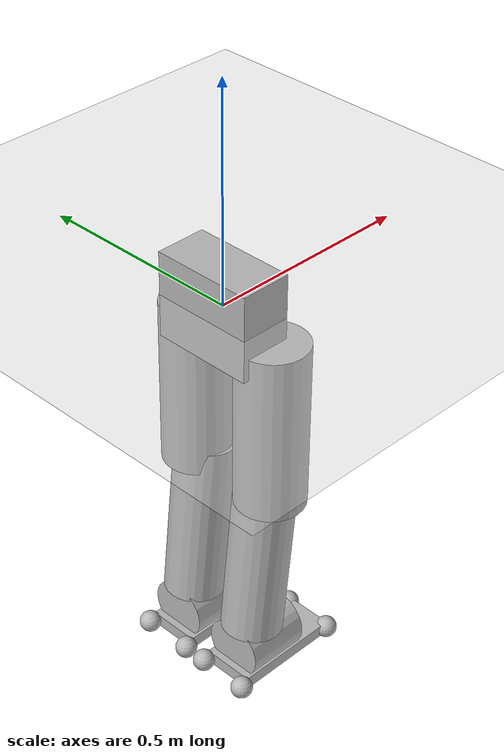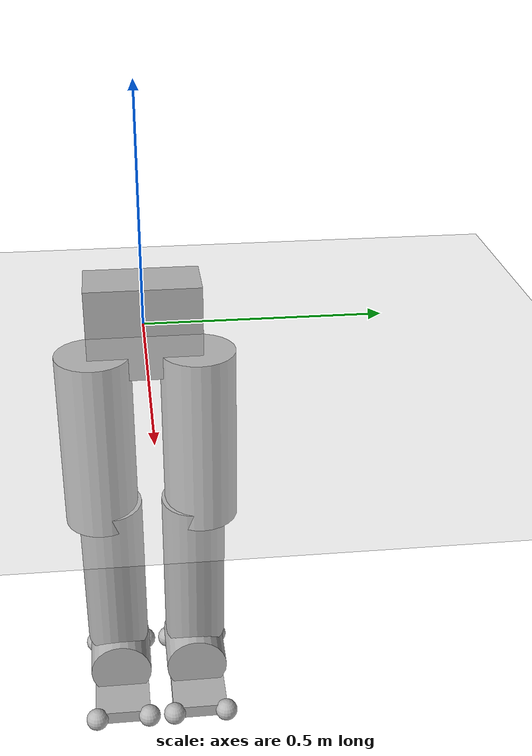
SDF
<?xml version="1.0" ?>
<sdf version="1.5">
  <world name="default">
  <physics type="ode">
    <max_step_size>0.001</max_step_size>
    <real_time_factor>1</real_time_factor>
    <real_time_update_rate>1000</real_time_update_rate>
    <max_contacts>1000</max_contacts>
    <simbody>
      <min_step_size>0.0001</min_step_size>
      <accuracy>0.001</accuracy>
      <max_transient_velocity>0.01</max_transient_velocity>
      <contact>
        <stiffness>1e8</stiffness>
        <dissipation>100</dissipation>
        <plastic_coef_restitution>0.5</plastic_coef_restitution>
        <plastic_impact_velocity>0.5</plastic_impact_velocity>
        <static_friction>0.1</static_friction>
        <dynamic_friction>0.1</dynamic_friction>
        <viscous_friction>0</viscous_friction>
        <override_impact_capture_velocity>0.001</override_impact_capture_velocity>
        <override_stiction_transition_velocity>0.001</override_stiction_transition_velocity>
      </contact>
    </simbody>
    <bullet>
      <solver>
        <type>sequential_impulse</type>
        <min_step_size>1e-5</min_step_size>
        <iters>50</iters>
        <sor>1.3</sor>
      </solver>
      <constraints>
        <cfm>0.0</cfm>
        <erp>0.2</erp>
        <contact_surface_layer>0.001</contact_surface_layer>
        <split_impulse>1</split_impulse>
        <split_impulse_penetration_threshold>-0.01</split_impulse_penetration_threshold>
      </constraints>
    </bullet>
    <ode>
      <solver>
        <type>quick</type>
        <min_step_size>1e-6</min_step_size>
        <iters>1000</iters>
        <sor>1.0</sor>
      </solver>
      <constraints>
        <cfm>0.0</cfm>
        <erp>0.6</erp>
        <contact_max_correcting_vel>1e2</contact_max_correcting_vel>
        <contact_surface_layer>1e-5</contact_surface_layer>
      </constraints>
    </ode>
  </physics>
    <!-- Ground -->
    <include>
      <uri>model://ground_plane</uri>
    </include>
    <!-- Links (Lynx) model -->
    <include>
      <uri>model://atlas</uri>
      <pose>0 0 0 0 0 0</pose>
    </include>
    <!-- A global light source -->
    <include>
      <uri>model://sun</uri>
    </include>
  </world>
</sdf>

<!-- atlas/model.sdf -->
<sdf version='1.5'>
  <model name='ROBOT'>
  <plugin name="PacerPlugin" filename="libPacerGazeboPlugin.so"/>
  <pose>0 0 1 0 -0 0</pose>
    <link name='BODY0'>
      <pose>0 0 0 0 -0 0</pose>
      <inertial>
        <mass>14.2529</mass>
        <inertia>
          <ixx>0.1</ixx>
          <ixy>0.0</ixy>
          <ixz>-0.0</ixz>
          <iyy>0.1</iyy>
          <iyz>-0.0</iyz>
          <izz>0.1</izz>
        </inertia>
      </inertial>
      <visual name='BODY0_visual'>
        <geometry>
          <box>
            <size>0.12 0.24 0.20</size>
          </box>
        </geometry>
      </visual>
      <velocity_decay>
        <linear>0</linear>
        <angular>0</angular>
      </velocity_decay>
    </link>
    <link name='l_uglut'>
      <pose>0 0.089 0 0 -0 0</pose>
      <inertial>
        <pose>0 0 0 0 0 0</pose>
        <mass>0.5166</mass>
        <inertia>
          <ixx>0.01</ixx>
          <ixy>0.0</ixy>
          <ixz>-0.0</ixz>
          <iyy>0.01</iyy>
          <iyz>-0.0</iyz>
          <izz>0.01</izz>
        </inertia>
      </inertial>
      <visual name='l_uglut_visual'>
        <pose>0 0 0 0 1.57079 0</pose>
        <geometry>
          <cylinder>
            <length>0.078396</length>
            <radius>0.019096</radius>
          </cylinder>
        </geometry>
      </visual>
      <velocity_decay>
        <linear>0</linear>
        <angular>0</angular>
      </velocity_decay>
    </link>
    <joint name='l_leg_uhz1' type='revolute'>
      <child>l_uglut</child>
      <parent>BODY0</parent>
      <axis>
        <xyz>0 0 1</xyz>
        <limit>
          <lower>-1e+16</lower>
          <upper>1e+16</upper>
        </limit>
        <dynamics/>
        <use_parent_model_frame>1</use_parent_model_frame>
      </axis>
    </joint>
    <link name='l_lglut'>
      <pose>0 0.089 0 0 -0 0</pose>
      <inertial>
        <pose>0 0 0 0 0 0</pose>
        <mass>0.69</mass>
        <inertia>
          <ixx>0.01</ixx>
          <ixy>0.0</ixy>
          <ixz>-0.0</ixz>
          <iyy>0.01</iyy>
          <iyz>-0.0</iyz>
          <izz>0.01</izz>
        </inertia>
      </inertial>
      <visual name='l_lglut_visual'>
        <pose>0 0 0 0 0 0</pose>
        <geometry>
          <cylinder>
            <length>0.060306</length>
            <radius>0.0200969</radius>
          </cylinder>
        </geometry>
      </visual>
      <velocity_decay>
        <linear>0</linear>
        <angular>0</angular>
      </velocity_decay>
    </link>
    <joint name='l_leg_mhx2' type='revolute'>
      <child>l_lglut</child>
      <parent>l_uglut</parent>
      <axis>
        <xyz>1 0 0</xyz>
        <limit>
          <lower>-1e+16</lower>
          <upper>1e+16</upper>
        </limit>
        <dynamics/>
        <use_parent_model_frame>1</use_parent_model_frame>
      </axis>
    </joint>
    <link name='l_uleg'>
      <pose>0.05 0.089 -0.05 0 -0 0</pose>
      <inertial>
        <pose>0 0 -0.21 0 -0 0</pose>
        <mass>7.34</mass>
        <inertia>
          <ixx>0.01</ixx>
          <ixy>0.0</ixy>
          <ixz>-0.0</ixz>
          <iyy>0.01</iyy>
          <iyz>-0.0</iyz>
          <izz>0.01</izz>
        </inertia>
      </inertial>
      <visual name='l_uleg_visual'>
        <pose>-0.0179 0.02085 -0.2 0 -0 0</pose>
        <geometry>
          <cylinder>
            <length>0.4</length>
            <radius>0.08</radius>
          </cylinder>
        </geometry>
      </visual>
      <velocity_decay>
        <linear>0</linear>
        <angular>0</angular>
      </velocity_decay>
    </link>
    <joint name='l_leg_lhy3' type='revolute'>
      <child>l_uleg</child>
      <parent>l_lglut</parent>
      <axis>
        <xyz>0 1 0</xyz>
        <limit>
          <lower>-1e+16</lower>
          <upper>1e+16</upper>
        </limit>
        <dynamics/>
        <use_parent_model_frame>1</use_parent_model_frame>
      </axis>
    </joint>
    <link name='l_lleg'>
      <pose>0 0.089 -0.424 0 -0 0</pose>
      <inertial>
        <pose>0.001 0 -0.187 0 -0 0</pose>
        <mass>4.367</mass>
        <inertia>
          <ixx>0.01</ixx>
          <ixy>0.0</ixy>
          <ixz>-0.0</ixz>
          <iyy>0.01</iyy>
          <iyz>-0.0</iyz>
          <izz>0.01</izz>
        </inertia>
      </inertial>
      <visual name='l_lleg_visual'>
        <pose>0.02 0.00295 -0.18 0 0.1 0</pose>
        <geometry>
          <cylinder>
            <length>0.4</length>
            <radius>0.07</radius>
          </cylinder>
        </geometry>
      </visual>
      <velocity_decay>
        <linear>0</linear>
        <angular>0</angular>
      </velocity_decay>
    </link>
    <joint name='l_leg_kny4' type='revolute'>
      <child>l_lleg</child>
      <parent>l_uleg</parent>
      <axis>
        <xyz>0 1 0</xyz>
        <limit>
          <lower>-1e+16</lower>
          <upper>1e+16</upper>
        </limit>
        <dynamics/>
        <use_parent_model_frame>1</use_parent_model_frame>
      </axis>
    </joint>
    <link name='l_talus'>
      <pose>0 0.089 -0.846 0 -0 0</pose>
      <inertial>
        <pose>0 0 0 0 -0 0</pose>
        <mass>0.1</mass>
        <inertia>
          <ixx>0.01</ixx>
          <ixy>0.0</ixy>
          <ixz>-0.0</ixz>
          <iyy>0.01</iyy>
          <iyz>-0.0</iyz>
          <izz>0.01</izz>
        </inertia>
      </inertial>
      <visual name='l_talus_visual'>
        <pose>0.02 0 0 -2.65359e-06 1.57079 -2.65359e-06</pose>
        <geometry>
          <cylinder>
            <length>0.15</length>
            <radius>0.07</radius>
          </cylinder>
        </geometry>
      </visual>
      <velocity_decay>
        <linear>0</linear>
        <angular>0</angular>
      </velocity_decay>
    </link>
    <joint name='l_leg_uay5' type='revolute'>
      <child>l_talus</child>
      <parent>l_lleg</parent>
      <axis>
        <xyz>0 1 0</xyz>
        <limit>
          <lower>-1e+16</lower>
          <upper>1e+16</upper>
        </limit>
        <dynamics/>
        <use_parent_model_frame>1</use_parent_model_frame>
      </axis>
    </joint>
    <link name='l_foot'>
      <pose>0.01 0.089 -0.846 0 -0 0</pose>
      <inertial>
        <pose>0.027 0 -0.067 0 -0 0</pose>
        <mass>1.634</mass>
        <inertia>
          <ixx>0.01</ixx>
          <ixy>0.0</ixy>
          <ixz>-0.0</ixz>
          <iyy>0.01</iyy>
          <iyz>-0.0</iyz>
          <izz>0.01</izz>
        </inertia>
      </inertial>
      <collision name='l_foot_collision'>
        <pose>0.178 0.06 -0.056119 0 -0 0</pose>
        <geometry>
          <sphere>
            <radius>0.025</radius>
          </sphere>
        </geometry>
      </collision>
      <collision name='l_foot_collision'>
        <pose>0.178 -0.06 -0.056119 0 -0 0</pose>
        <geometry>
          <sphere>
            <radius>0.025</radius>
          </sphere>
        </geometry>
      </collision>
      <collision name='l_foot_collision'>
        <pose>-0.098 0.06 -0.056119 0 -0 0</pose>
        <geometry>
          <sphere>
            <radius>0.025</radius>
          </sphere>
        </geometry>
      </collision>
      <collision name='l_foot_collision'>
        <pose>-0.098 -0.06 -0.056119 0 -0 0</pose>
        <geometry>
          <sphere>
            <radius>0.025</radius>
          </sphere>
        </geometry>
      </collision>

      <visual name='l_foot_visual1'>
        <pose>0.048 0 -0.056119 0 -0 0</pose>
        <geometry>
          <box>
            <size>0.26 0.124887 0.03</size>
          </box>
        </geometry>
      </visual>
      <visual name='l_foot_visual2'>
        <pose>0.178 0.06 -0.056119 0 -0 0</pose>
        <geometry>
          <sphere>
            <radius>0.025</radius>
          </sphere>
        </geometry>
      </visual>
      <visual name='l_foot_visual3'>
        <pose>0.178 -0.06 -0.056119 0 -0 0</pose>
        <geometry>
          <sphere>
            <radius>0.025</radius>
          </sphere>
        </geometry>
      </visual>
      <visual name='l_foot_visual4'>
      <pose>-0.098 0.06 -0.056119 0 -0 0</pose>
        <geometry>
          <sphere>
            <radius>0.025</radius>
          </sphere>
        </geometry>
      </visual>
      <visual name='l_foot_visual5'>
      <pose>-0.098 -0.06 -0.056119 0 -0 0</pose>
        <geometry>
          <sphere>
            <radius>0.025</radius>
          </sphere>
        </geometry>
      </visual>

      <velocity_decay>
        <linear>0</linear>
        <angular>0</angular>
      </velocity_decay>

      <sensor name='l_foot_contact' type='contact'>
        <contact>
          <collision>l_foot_collision</collision>
        </contact>
        <update_rate>1000</update_rate>
      </sensor>
    </link>
    <joint name='l_leg_lax6' type='revolute'>
      <child>l_foot</child>
      <parent>l_talus</parent>
      <axis>
        <xyz>1 0 0</xyz>
        <limit>
          <lower>-1e+16</lower>
          <upper>1e+16</upper>
        </limit>
        <dynamics/>
        <use_parent_model_frame>1</use_parent_model_frame>
      </axis>
    </joint>
    <link name='r_uglut'>
      <pose>0 -0.089 0 0 -0 0</pose>
      <inertial>
      <pose>0 0 0 0 0 0</pose>
        <mass>0.5166</mass>
        <inertia>
          <ixx>0.01</ixx>
          <ixy>0.0</ixy>
          <ixz>-0.0</ixz>
          <iyy>0.01</iyy>
          <iyz>-0.0</iyz>
          <izz>0.01</izz>
        </inertia>
      </inertial>
      <visual name='r_uglut_visual'>
        <pose>0 0 0 0 1.57079 0</pose>
        <geometry>
          <cylinder>
            <length>0.078396</length>
            <radius>0.019096</radius>
          </cylinder>
        </geometry>
      </visual>
      <velocity_decay>
        <linear>0</linear>
        <angular>0</angular>
      </velocity_decay>
    </link>
    <joint name='r_leg_uhz1' type='revolute'>
      <child>r_uglut</child>
      <parent>BODY0</parent>
      <axis>
        <xyz>0 0 1</xyz>
        <limit>
          <lower>-1e+16</lower>
          <upper>1e+16</upper>
        </limit>
        <dynamics/>
        <use_parent_model_frame>1</use_parent_model_frame>
      </axis>
    </joint>
    <link name='r_lglut'>
      <pose>0 -0.089 0 0 -0 0</pose>
      <inertial>
      <pose>0 0 0 0 0 0</pose>
        <mass>0.69</mass>
        <inertia>
          <ixx>0.01</ixx>
          <ixy>0.0</ixy>
          <ixz>-0.0</ixz>
          <iyy>0.01</iyy>
          <iyz>-0.0</iyz>
          <izz>0.01</izz>
        </inertia>
      </inertial>
      <visual name='r_lglut_visual'>
      <pose>0 0 0 0 0 0</pose>
        <geometry>
          <cylinder>
            <length>0.060306</length>
            <radius>0.0200969</radius>
          </cylinder>
        </geometry>
      </visual>
      <velocity_decay>
        <linear>0</linear>
        <angular>0</angular>
      </velocity_decay>
    </link>
    <joint name='r_leg_mhx2' type='revolute'>
      <child>r_lglut</child>
      <parent>r_uglut</parent>
      <axis>
        <xyz>1 0 0</xyz>
        <limit>
          <lower>-1e+16</lower>
          <upper>1e+16</upper>
        </limit>
        <dynamics/>
        <use_parent_model_frame>1</use_parent_model_frame>
      </axis>
    </joint>
    <link name='r_uleg'>
      <pose>0.05 -0.089 -0.05 0 -0 0</pose>
      <inertial>
        <pose>0 0 -0.21 0 -0 0</pose>
        <mass>7.34</mass>
        <inertia>
          <ixx>0.01</ixx>
          <ixy>0.0</ixy>
          <ixz>-0.0</ixz>
          <iyy>0.01</iyy>
          <iyz>-0.0</iyz>
          <izz>0.01</izz>
        </inertia>
      </inertial>
      <visual name='r_uleg_visual'>
        <pose>-0.0179 -0.02085 -0.20 0 -0 0</pose>
        <geometry>
          <cylinder>
          <length>0.4</length>
          <radius>0.08</radius>
          </cylinder>
        </geometry>
      </visual>
      <velocity_decay>
        <linear>0</linear>
        <angular>0</angular>
      </velocity_decay>
    </link>
    <joint name='r_leg_lhy3' type='revolute'>
      <child>r_uleg</child>
      <parent>r_lglut</parent>
      <axis>
        <xyz>0 1 0</xyz>
        <limit>
          <lower>-1e+16</lower>
          <upper>1e+16</upper>
        </limit>
        <dynamics/>
        <use_parent_model_frame>1</use_parent_model_frame>
      </axis>
    </joint>
    <link name='r_lleg'>
      <pose>0 -0.089 -0.424 0 -0 0</pose>
      <inertial>
        <pose>0.001 0 -0.187 0 -0 0</pose>
        <mass>4.367</mass>
        <inertia>
          <ixx>0.01</ixx>
          <ixy>0.0</ixy>
          <ixz>-0.0</ixz>
          <iyy>0.01</iyy>
          <iyz>-0.0</iyz>
          <izz>0.01</izz>
        </inertia>
      </inertial>
      <visual name='r_lleg_visual'>
        <pose>0.02 -0.00295 -0.18 0 0.1 0</pose>
        <geometry>
          <cylinder>
            <length>0.4</length>
            <radius>0.07</radius>
          </cylinder>
        </geometry>
      </visual>
      <velocity_decay>
        <linear>0</linear>
        <angular>0</angular>
      </velocity_decay>
    </link>
    <joint name='r_leg_kny4' type='revolute'>
      <child>r_lleg</child>
      <parent>r_uleg</parent>
      <axis>
        <xyz>0 1 0</xyz>
        <limit>
          <lower>-1e+16</lower>
          <upper>1e+16</upper>
        </limit>
        <dynamics/>
        <use_parent_model_frame>1</use_parent_model_frame>
      </axis>
    </joint>
    <link name='r_talus'>
      <pose>0 -0.089 -0.846 0 -0 0</pose>
      <inertial>
        <pose>0 0 0 0 -0 0</pose>
        <mass>0.1</mass>
        <inertia>
          <ixx>0.01</ixx>
          <ixy>0.0</ixy>
          <ixz>-0.0</ixz>
          <iyy>0.01</iyy>
          <iyz>-0.0</iyz>
          <izz>0.01</izz>
        </inertia>
      </inertial>
      <visual name='r_talus_visual'>
        <pose>0.02 0 0 -2.65359e-06 1.57079 -2.65359e-06</pose>
        <geometry>
          <cylinder>
            <length>0.15</length>
            <radius>0.07</radius>
          </cylinder>
        </geometry>
      </visual>
      <velocity_decay>
        <linear>0</linear>
        <angular>0</angular>
      </velocity_decay>
    </link>
    <joint name='r_leg_uay5' type='revolute'>
      <child>r_talus</child>
      <parent>r_lleg</parent>
      <axis>
        <xyz>0 1 0</xyz>
        <limit>
          <lower>-1e+16</lower>
          <upper>1e+16</upper>
        </limit>
        <dynamics/>
        <use_parent_model_frame>1</use_parent_model_frame>
      </axis>
    </joint>
    <link name='r_foot'>
      <pose>0.01 -0.089 -0.846 0 -0 0</pose>
      <inertial>
        <pose>0.027 0 -0.067 0 -0 0</pose>
        <mass>1.634</mass>
        <inertia>
          <ixx>0.01</ixx>
          <ixy>0.0</ixy>
          <ixz>-0.0</ixz>
          <iyy>0.01</iyy>
          <iyz>-0.0</iyz>
          <izz>0.01</izz>
        </inertia>
      </inertial>

      <collision name='r_foot_collision'>
        <pose>0.178 0.06 -0.056119 0 -0 0</pose>
        <geometry>
          <sphere>
            <radius>0.025</radius>
          </sphere>
        </geometry>
      </collision>
      <collision name='r_foot_collision'>
        <pose>0.178 -0.06 -0.056119 0 -0 0</pose>
        <geometry>
          <sphere>
            <radius>0.025</radius>
          </sphere>
        </geometry>
      </collision>
      <collision name='r_foot_collision'>
        <pose>-0.098 0.06 -0.056119 0 -0 0</pose>
        <geometry>
          <sphere>
            <radius>0.025</radius>
          </sphere>
        </geometry>
      </collision>
      <collision name='r_foot_collision'>
        <pose>-0.098 -0.06 -0.056119 0 -0 0</pose>
        <geometry>
          <sphere>
            <radius>0.025</radius>
          </sphere>
        </geometry>
      </collision>

      <visual name='r_foot_visual1'>
        <pose>0.048 0 -0.056119 0 -0 0</pose>
        <geometry>
          <box>
            <size>0.26 0.124887 0.03</size>
          </box>
        </geometry>
      </visual>
      <visual name='r_foot_visual2'>
        <pose>0.178 0.06 -0.056119 0 -0 0</pose>
        <geometry>
          <sphere>
            <radius>0.025</radius>
          </sphere>
        </geometry>
      </visual>
      <visual name='r_foot_visual3'>
        <pose>0.178 -0.06 -0.056119 0 -0 0</pose>
        <geometry>
          <sphere>
            <radius>0.025</radius>
          </sphere>
        </geometry>
      </visual>
      <visual name='r_foot_visual4'>
      <pose>-0.098 0.06 -0.056119 0 -0 0</pose>
        <geometry>
          <sphere>
            <radius>0.025</radius>
          </sphere>
        </geometry>
      </visual>
      <visual name='r_foot_visual5'>
      <pose>-0.098 -0.06 -0.056119 0 -0 0</pose>
        <geometry>
          <sphere>
            <radius>0.025</radius>
          </sphere>
        </geometry>
      </visual>

      <velocity_decay>
        <linear>0</linear>
        <angular>0</angular>
      </velocity_decay>

      <sensor name='r_foot_contact' type='contact'>
        <contact>
          <collision>r_foot_collision</collision>
        </contact>
        <update_rate>1000</update_rate>
      </sensor>
    </link>
    <joint name='r_leg_lax6' type='revolute'>
      <child>r_foot</child>
      <parent>r_talus</parent>
      <axis>
        <xyz>1 0 0</xyz>
        <limit>
          <lower>-1e+16</lower>
          <upper>1e+16</upper>
        </limit>
        <dynamics/>
        <use_parent_model_frame>1</use_parent_model_frame>
      </axis>
    </joint>
  </model>
</sdf>
